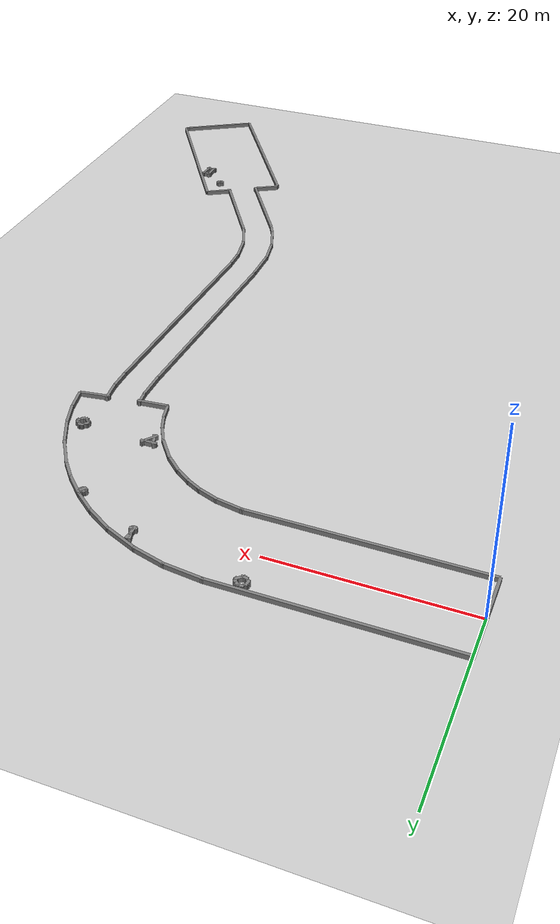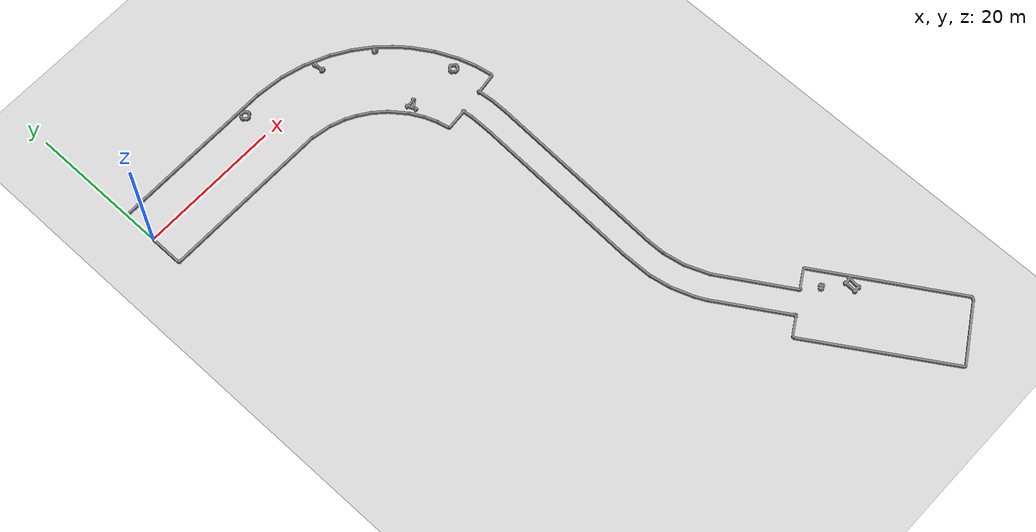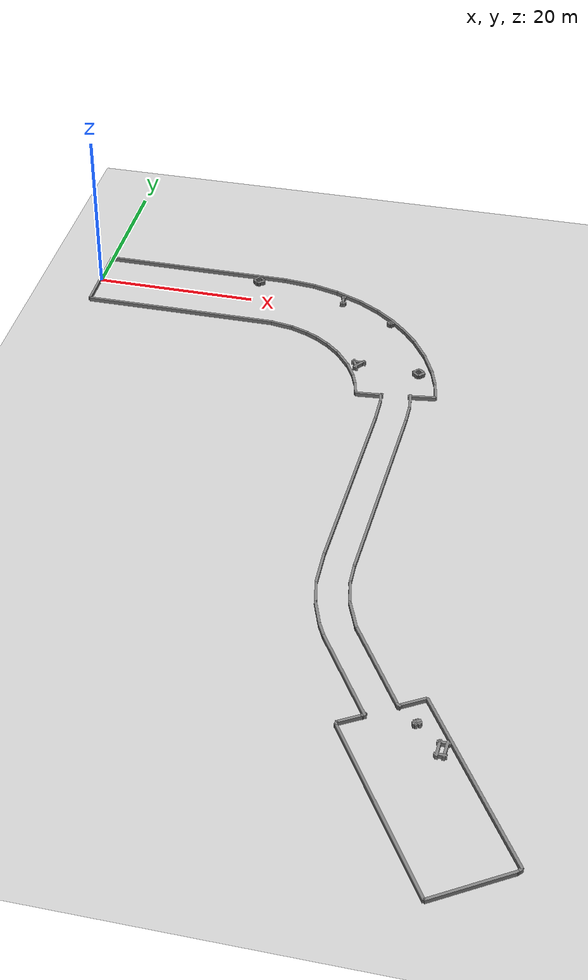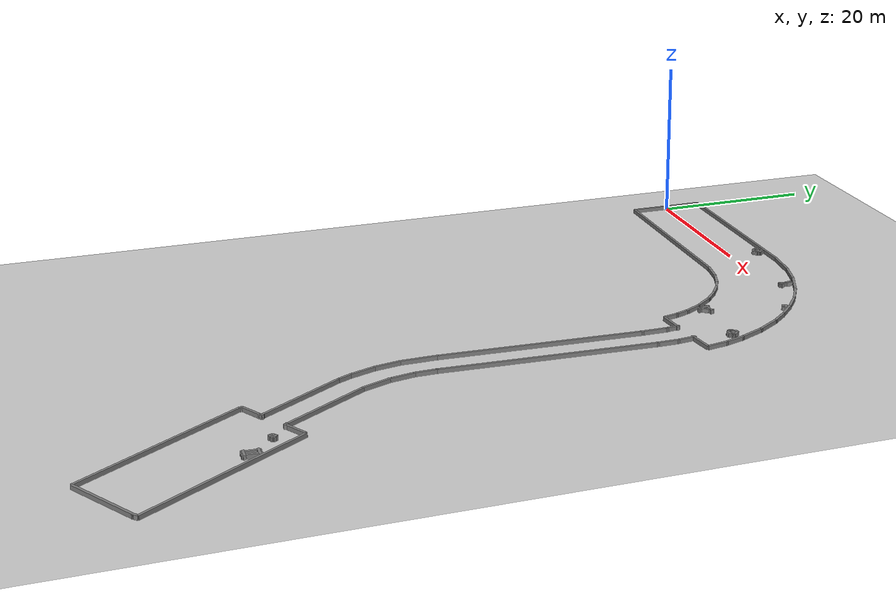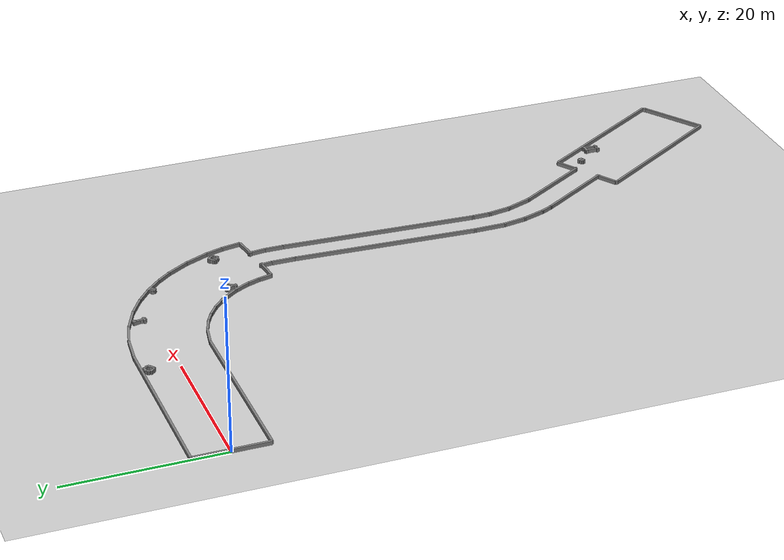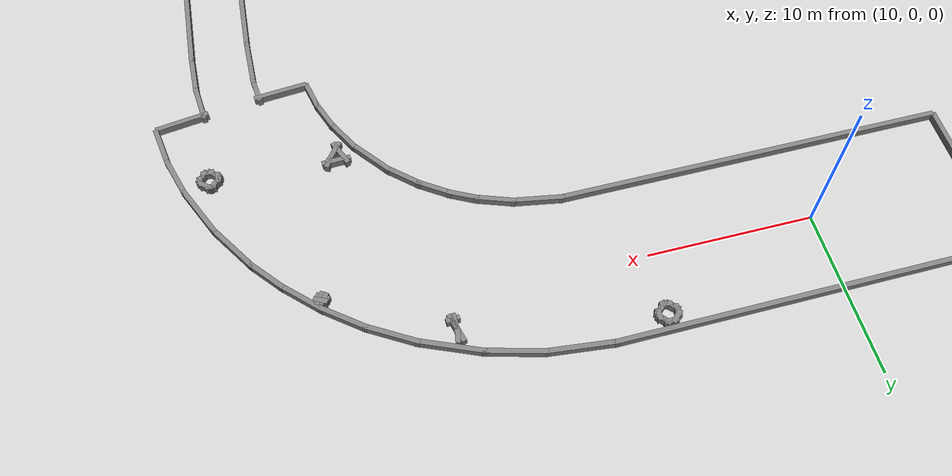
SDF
<?xml version="1.0"?>
<sdf version="1.6">
  <world name="open_narrow_obs">
    <include><uri>model://ground_plane</uri></include>
    <include><uri>model://sun</uri></include>
    <physics type="ode"><real_time_update_rate>1000</real_time_update_rate><max_step_size>0.001</max_step_size></physics>
    <model name="corridor_walls">
      <static>true</static>
      <link name="wall_0">
        <pose>25.3414 4.5480 0.2500 0 0 -0.11243</pose>
        <collision name="c"><geometry><box><size>4.1996 0.3000 0.5000</size></box></geometry></collision>
        <visual name="v"><geometry><box><size>4.1996 0.3000 0.5000</size></box></geometry>
          <material><ambient>0.35 0.35 0.35 1</ambient><diffuse>0.5 0.5 0.5 1</diffuse></material></visual>
      </link>
      <link name="wall_1">
        <pose>28.8955 3.8874 0.2500 0 0 -0.26791</pose>
        <collision name="c"><geometry><box><size>3.6054 0.3000 0.5000</size></box></geometry></collision>
        <visual name="v"><geometry><box><size>3.6054 0.3000 0.5000</size></box></geometry>
          <material><ambient>0.35 0.35 0.35 1</ambient><diffuse>0.5 0.5 0.5 1</diffuse></material></visual>
      </link>
      <link name="wall_2">
        <pose>32.1655 2.7241 0.2500 0 0 -0.40944</pose>
        <collision name="c"><geometry><box><size>3.9110 0.3000 0.5000</size></box></geometry></collision>
        <visual name="v"><geometry><box><size>3.9110 0.3000 0.5000</size></box></geometry>
          <material><ambient>0.35 0.35 0.35 1</ambient><diffuse>0.5 0.5 0.5 1</diffuse></material></visual>
      </link>
      <link name="wall_3">
        <pose>35.1214 1.2145 0.2500 0 0 -0.54756</pose>
        <collision name="c"><geometry><box><size>3.3013 0.3000 0.5000</size></box></geometry></collision>
        <visual name="v"><geometry><box><size>3.3013 0.3000 0.5000</size></box></geometry>
          <material><ambient>0.35 0.35 0.35 1</ambient><diffuse>0.5 0.5 0.5 1</diffuse></material></visual>
      </link>
      <link name="wall_4">
        <pose>37.4803 -0.4211 0.2500 0 0 -0.67114</pose>
        <collision name="c"><geometry><box><size>3.0135 0.3000 0.5000</size></box></geometry></collision>
        <visual name="v"><geometry><box><size>3.0135 0.3000 0.5000</size></box></geometry>
          <material><ambient>0.35 0.35 0.35 1</ambient><diffuse>0.5 0.5 0.5 1</diffuse></material></visual>
      </link>
      <link name="wall_5">
        <pose>39.5023 -2.2229 0.2500 0 0 -0.78540</pose>
        <collision name="c"><geometry><box><size>2.9775 0.3000 0.5000</size></box></geometry></collision>
        <visual name="v"><geometry><box><size>2.9775 0.3000 0.5000</size></box></geometry>
          <material><ambient>0.35 0.35 0.35 1</ambient><diffuse>0.5 0.5 0.5 1</diffuse></material></visual>
      </link>
      <link name="wall_6">
        <pose>41.1775 -4.0554 0.2500 0 0 -0.88313</pose>
        <collision name="c"><geometry><box><size>2.5647 0.3000 0.5000</size></box></geometry></collision>
        <visual name="v"><geometry><box><size>2.5647 0.3000 0.5000</size></box></geometry>
          <material><ambient>0.35 0.35 0.35 1</ambient><diffuse>0.5 0.5 0.5 1</diffuse></material></visual>
      </link>
      <link name="wall_7">
        <pose>42.7819 -6.3200 0.2500 0 0 -1.00407</pose>
        <collision name="c"><geometry><box><size>3.5596 0.3000 0.5000</size></box></geometry></collision>
        <visual name="v"><geometry><box><size>3.5596 0.3000 0.5000</size></box></geometry>
          <material><ambient>0.35 0.35 0.35 1</ambient><diffuse>0.5 0.5 0.5 1</diffuse></material></visual>
      </link>
      <link name="wall_8">
        <pose>44.3542 -9.2131 0.2500 0 0 -1.14103</pose>
        <collision name="c"><geometry><box><size>3.6001 0.3000 0.5000</size></box></geometry></collision>
        <visual name="v"><geometry><box><size>3.6001 0.3000 0.5000</size></box></geometry>
          <material><ambient>0.35 0.35 0.35 1</ambient><diffuse>0.5 0.5 0.5 1</diffuse></material></visual>
      </link>
      <link name="wall_9">
        <pose>45.4234 -11.9179 0.2500 0 0 -1.26492</pose>
        <collision name="c"><geometry><box><size>2.7906 0.3000 0.5000</size></box></geometry></collision>
        <visual name="v"><geometry><box><size>2.7906 0.3000 0.5000</size></box></geometry>
          <material><ambient>0.35 0.35 0.35 1</ambient><diffuse>0.5 0.5 0.5 1</diffuse></material></visual>
      </link>
      <link name="wall_10">
        <pose>46.0216 -14.3015 0.2500 0 0 -1.38724</pose>
        <collision name="c"><geometry><box><size>2.6970 0.3000 0.5000</size></box></geometry></collision>
        <visual name="v"><geometry><box><size>2.6970 0.3000 0.5000</size></box></geometry>
          <material><ambient>0.35 0.35 0.35 1</ambient><diffuse>0.5 0.5 0.5 1</diffuse></material></visual>
      </link>
      <link name="wall_11">
        <pose>44.6453 -15.8654 0.2500 0 0 -2.99985</pose>
        <collision name="c"><geometry><box><size>3.2673 0.3000 0.5000</size></box></geometry></collision>
        <visual name="v"><geometry><box><size>3.2673 0.3000 0.5000</size></box></geometry>
          <material><ambient>0.35 0.35 0.35 1</ambient><diffuse>0.5 0.5 0.5 1</diffuse></material></visual>
      </link>
      <link name="wall_12">
        <pose>43.4293 -16.9900 0.2500 0 0 -1.45565</pose>
        <collision name="c"><geometry><box><size>2.4760 0.3000 0.5000</size></box></geometry></collision>
        <visual name="v"><geometry><box><size>2.4760 0.3000 0.5000</size></box></geometry>
          <material><ambient>0.35 0.35 0.35 1</ambient><diffuse>0.5 0.5 0.5 1</diffuse></material></visual>
      </link>
      <link name="wall_13">
        <pose>43.5553 -19.3198 0.2500 0 0 -1.57080</pose>
        <collision name="c"><geometry><box><size>2.7634 0.3000 0.5000</size></box></geometry></collision>
        <visual name="v"><geometry><box><size>2.7634 0.3000 0.5000</size></box></geometry>
          <material><ambient>0.35 0.35 0.35 1</ambient><diffuse>0.5 0.5 0.5 1</diffuse></material></visual>
      </link>
      <link name="wall_14">
        <pose>42.9927 -33.4018 0.2500 0 0 -1.61456</pose>
        <collision name="c"><geometry><box><size>26.0121 0.3000 0.5000</size></box></geometry></collision>
        <visual name="v"><geometry><box><size>26.0121 0.3000 0.5000</size></box></geometry>
          <material><ambient>0.35 0.35 0.35 1</ambient><diffuse>0.5 0.5 0.5 1</diffuse></material></visual>
      </link>
      <link name="wall_15">
        <pose>42.4615 -47.4722 0.2500 0 0 -1.54554</pose>
        <collision name="c"><geometry><box><size>2.7749 0.3000 0.5000</size></box></geometry></collision>
        <visual name="v"><geometry><box><size>2.7749 0.3000 0.5000</size></box></geometry>
          <material><ambient>0.35 0.35 0.35 1</ambient><diffuse>0.5 0.5 0.5 1</diffuse></material></visual>
      </link>
      <link name="wall_16">
        <pose>42.7715 -50.1854 0.2500 0 0 -1.38545</pose>
        <collision name="c"><geometry><box><size>3.3523 0.3000 0.5000</size></box></geometry></collision>
        <visual name="v"><geometry><box><size>3.3523 0.3000 0.5000</size></box></geometry>
          <material><ambient>0.35 0.35 0.35 1</ambient><diffuse>0.5 0.5 0.5 1</diffuse></material></visual>
      </link>
      <link name="wall_17">
        <pose>43.7010 -53.3141 0.2500 0 0 -1.19355</pose>
        <collision name="c"><geometry><box><size>3.8630 0.3000 0.5000</size></box></geometry></collision>
        <visual name="v"><geometry><box><size>3.8630 0.3000 0.5000</size></box></geometry>
          <material><ambient>0.35 0.35 0.35 1</ambient><diffuse>0.5 0.5 0.5 1</diffuse></material></visual>
      </link>
      <link name="wall_18">
        <pose>47.3138 -59.6961 0.2500 0 0 -1.01220</pose>
        <collision name="c"><geometry><box><size>11.5029 0.3000 0.5000</size></box></geometry></collision>
        <visual name="v"><geometry><box><size>11.5029 0.3000 0.5000</size></box></geometry>
          <material><ambient>0.35 0.35 0.35 1</ambient><diffuse>0.5 0.5 0.5 1</diffuse></material></visual>
      </link>
      <link name="wall_19">
        <pose>50.3695 -64.4833 0.2500 0 0 -0.56262</pose>
        <collision name="c"><geometry><box><size>0.6172 0.3000 0.5000</size></box></geometry></collision>
        <visual name="v"><geometry><box><size>0.6172 0.3000 0.5000</size></box></geometry>
          <material><ambient>0.35 0.35 0.35 1</ambient><diffuse>0.5 0.5 0.5 1</diffuse></material></visual>
      </link>
      <link name="wall_20">
        <pose>51.5869 -63.8164 0.2500 0 0 0.54367</pose>
        <collision name="c"><geometry><box><size>3.1998 0.3000 0.5000</size></box></geometry></collision>
        <visual name="v"><geometry><box><size>3.1998 0.3000 0.5000</size></box></geometry>
          <material><ambient>0.35 0.35 0.35 1</ambient><diffuse>0.5 0.5 0.5 1</diffuse></material></visual>
      </link>
      <link name="wall_21">
        <pose>58.6572 -72.0301 0.2500 0 0 -1.00794</pose>
        <collision name="c"><geometry><box><size>21.3832 0.3000 0.5000</size></box></geometry></collision>
        <visual name="v"><geometry><box><size>21.3832 0.3000 0.5000</size></box></geometry>
          <material><ambient>0.35 0.35 0.35 1</ambient><diffuse>0.5 0.5 0.5 1</diffuse></material></visual>
      </link>
      <link name="wall_22">
        <pose>64.1320 -81.2738 0.2500 0 0 -2.31020</pose>
        <collision name="c"><geometry><box><size>0.6982 0.3000 0.5000</size></box></geometry></collision>
        <visual name="v"><geometry><box><size>0.6982 0.3000 0.5000</size></box></geometry>
          <material><ambient>0.35 0.35 0.35 1</ambient><diffuse>0.5 0.5 0.5 1</diffuse></material></visual>
      </link>
      <link name="wall_23">
        <pose>60.2483 -83.7904 0.2500 0 0 -2.57923</pose>
        <collision name="c"><geometry><box><size>9.0914 0.3000 0.5000</size></box></geometry></collision>
        <visual name="v"><geometry><box><size>9.0914 0.3000 0.5000</size></box></geometry>
          <material><ambient>0.35 0.35 0.35 1</ambient><diffuse>0.5 0.5 0.5 1</diffuse></material></visual>
      </link>
      <link name="wall_24">
        <pose>50.6447 -77.1725 0.2500 0 0 2.13792</pose>
        <collision name="c"><geometry><box><size>21.4403 0.3000 0.5000</size></box></geometry></collision>
        <visual name="v"><geometry><box><size>21.4403 0.3000 0.5000</size></box></geometry>
          <material><ambient>0.35 0.35 0.35 1</ambient><diffuse>0.5 0.5 0.5 1</diffuse></material></visual>
      </link>
      <link name="wall_25">
        <pose>44.9428 -68.0919 0.2500 0 0 1.57080</pose>
        <collision name="c"><geometry><box><size>0.4692 0.3000 0.5000</size></box></geometry></collision>
        <visual name="v"><geometry><box><size>0.4692 0.3000 0.5000</size></box></geometry>
          <material><ambient>0.35 0.35 0.35 1</ambient><diffuse>0.5 0.5 0.5 1</diffuse></material></visual>
      </link>
      <link name="wall_26">
        <pose>46.1492 -67.1915 0.2500 0 0 0.54495</pose>
        <collision name="c"><geometry><box><size>2.9525 0.3000 0.5000</size></box></geometry></collision>
        <visual name="v"><geometry><box><size>2.9525 0.3000 0.5000</size></box></geometry>
          <material><ambient>0.35 0.35 0.35 1</ambient><diffuse>0.5 0.5 0.5 1</diffuse></material></visual>
      </link>
      <link name="wall_27">
        <pose>47.3189 -66.4181 0.2500 0 0 1.00818</pose>
        <collision name="c"><geometry><box><size>0.6172 0.3000 0.5000</size></box></geometry></collision>
        <visual name="v"><geometry><box><size>0.6172 0.3000 0.5000</size></box></geometry>
          <material><ambient>0.35 0.35 0.35 1</ambient><diffuse>0.5 0.5 0.5 1</diffuse></material></visual>
      </link>
      <link name="wall_28">
        <pose>44.4035 -61.6941 0.2500 0 0 2.13411</pose>
        <collision name="c"><geometry><box><size>11.5361 0.3000 0.5000</size></box></geometry></collision>
        <visual name="v"><geometry><box><size>11.5361 0.3000 0.5000</size></box></geometry>
          <material><ambient>0.35 0.35 0.35 1</ambient><diffuse>0.5 0.5 0.5 1</diffuse></material></visual>
      </link>
      <link name="wall_29">
        <pose>41.0212 -56.1810 0.2500 0 0 2.03444</pose>
        <collision name="c"><geometry><box><size>1.9771 0.3000 0.5000</size></box></geometry></collision>
        <visual name="v"><geometry><box><size>1.9771 0.3000 0.5000</size></box></geometry>
          <material><ambient>0.35 0.35 0.35 1</ambient><diffuse>0.5 0.5 0.5 1</diffuse></material></visual>
      </link>
      <link name="wall_30">
        <pose>40.1077 -53.9140 0.2500 0 0 1.91118</pose>
        <collision name="c"><geometry><box><size>3.4826 0.3000 0.5000</size></box></geometry></collision>
        <visual name="v"><geometry><box><size>3.4826 0.3000 0.5000</size></box></geometry>
          <material><ambient>0.35 0.35 0.35 1</ambient><diffuse>0.5 0.5 0.5 1</diffuse></material></visual>
      </link>
      <link name="wall_31">
        <pose>39.2892 -50.8916 0.2500 0 0 1.75614</pose>
        <collision name="c"><geometry><box><size>3.3523 0.3000 0.5000</size></box></geometry></collision>
        <visual name="v"><geometry><box><size>3.3523 0.3000 0.5000</size></box></geometry>
          <material><ambient>0.35 0.35 0.35 1</ambient><diffuse>0.5 0.5 0.5 1</diffuse></material></visual>
      </link>
      <link name="wall_32">
        <pose>38.9741 -47.2595 0.2500 0 0 1.58563</pose>
        <collision name="c"><geometry><box><size>4.5139 0.3000 0.5000</size></box></geometry></collision>
        <visual name="v"><geometry><box><size>4.5139 0.3000 0.5000</size></box></geometry>
          <material><ambient>0.35 0.35 0.35 1</ambient><diffuse>0.5 0.5 0.5 1</diffuse></material></visual>
      </link>
      <link name="wall_33">
        <pose>39.4742 -33.0502 0.2500 0 0 1.52690</pose>
        <collision name="c"><geometry><box><size>24.5108 0.3000 0.5000</size></box></geometry></collision>
        <visual name="v"><geometry><box><size>24.5108 0.3000 0.5000</size></box></geometry>
          <material><ambient>0.35 0.35 0.35 1</ambient><diffuse>0.5 0.5 0.5 1</diffuse></material></visual>
      </link>
      <link name="wall_34">
        <pose>40.0053 -19.4135 0.2500 0 0 1.57080</pose>
        <collision name="c"><geometry><box><size>3.3991 0.3000 0.5000</size></box></geometry></collision>
        <visual name="v"><geometry><box><size>3.3991 0.3000 0.5000</size></box></geometry>
          <material><ambient>0.35 0.35 0.35 1</ambient><diffuse>0.5 0.5 0.5 1</diffuse></material></visual>
      </link>
      <link name="wall_35">
        <pose>39.9128 -17.1326 0.2500 0 0 1.69515</pose>
        <collision name="c"><geometry><box><size>1.8117 0.3000 0.5000</size></box></geometry></collision>
        <visual name="v"><geometry><box><size>1.8117 0.3000 0.5000</size></box></geometry>
          <material><ambient>0.35 0.35 0.35 1</ambient><diffuse>0.5 0.5 0.5 1</diffuse></material></visual>
      </link>
      <link name="wall_36">
        <pose>38.4812 -16.6475 0.2500 0 0 -3.05239</pose>
        <collision name="c"><geometry><box><size>3.3120 0.3000 0.5000</size></box></geometry></collision>
        <visual name="v"><geometry><box><size>3.3120 0.3000 0.5000</size></box></geometry>
          <material><ambient>0.35 0.35 0.35 1</ambient><diffuse>0.5 0.5 0.5 1</diffuse></material></visual>
      </link>
      <link name="wall_37">
        <pose>36.6341 -15.8440 0.2500 0 0 1.79515</pose>
        <collision name="c"><geometry><box><size>1.9856 0.3000 0.5000</size></box></geometry></collision>
        <visual name="v"><geometry><box><size>1.9856 0.3000 0.5000</size></box></geometry>
          <material><ambient>0.35 0.35 0.35 1</ambient><diffuse>0.5 0.5 0.5 1</diffuse></material></visual>
      </link>
      <link name="wall_38">
        <pose>36.1397 -14.1973 0.2500 0 0 1.92550</pose>
        <collision name="c"><geometry><box><size>2.0995 0.3000 0.5000</size></box></geometry></collision>
        <visual name="v"><geometry><box><size>2.0995 0.3000 0.5000</size></box></geometry>
          <material><ambient>0.35 0.35 0.35 1</ambient><diffuse>0.5 0.5 0.5 1</diffuse></material></visual>
      </link>
      <link name="wall_39">
        <pose>35.3355 -12.4346 0.2500 0 0 2.06075</pose>
        <collision name="c"><geometry><box><size>2.4250 0.3000 0.5000</size></box></geometry></collision>
        <visual name="v"><geometry><box><size>2.4250 0.3000 0.5000</size></box></geometry>
          <material><ambient>0.35 0.35 0.35 1</ambient><diffuse>0.5 0.5 0.5 1</diffuse></material></visual>
      </link>
      <link name="wall_40">
        <pose>34.0053 -10.4243 0.2500 0 0 2.22787</pose>
        <collision name="c"><geometry><box><size>3.0628 0.3000 0.5000</size></box></geometry></collision>
        <visual name="v"><geometry><box><size>3.0628 0.3000 0.5000</size></box></geometry>
          <material><ambient>0.35 0.35 0.35 1</ambient><diffuse>0.5 0.5 0.5 1</diffuse></material></visual>
      </link>
      <link name="wall_41">
        <pose>32.3753 -8.6084 0.2500 0 0 2.39665</pose>
        <collision name="c"><geometry><box><size>2.4856 0.3000 0.5000</size></box></geometry></collision>
        <visual name="v"><geometry><box><size>2.4856 0.3000 0.5000</size></box></geometry>
          <material><ambient>0.35 0.35 0.35 1</ambient><diffuse>0.5 0.5 0.5 1</diffuse></material></visual>
      </link>
      <link name="wall_42">
        <pose>30.7758 -7.3181 0.2500 0 0 2.53605</pose>
        <collision name="c"><geometry><box><size>2.2764 0.3000 0.5000</size></box></geometry></collision>
        <visual name="v"><geometry><box><size>2.2764 0.3000 0.5000</size></box></geometry>
          <material><ambient>0.35 0.35 0.35 1</ambient><diffuse>0.5 0.5 0.5 1</diffuse></material></visual>
      </link>
      <link name="wall_43">
        <pose>29.2605 -6.3903 0.2500 0 0 2.66071</pose>
        <collision name="c"><geometry><box><size>1.9214 0.3000 0.5000</size></box></geometry></collision>
        <visual name="v"><geometry><box><size>1.9214 0.3000 0.5000</size></box></geometry>
          <material><ambient>0.35 0.35 0.35 1</ambient><diffuse>0.5 0.5 0.5 1</diffuse></material></visual>
      </link>
      <link name="wall_44">
        <pose>27.5286 -5.6482 0.2500 0 0 2.79282</pose>
        <collision name="c"><geometry><box><size>2.4946 0.3000 0.5000</size></box></geometry></collision>
        <visual name="v"><geometry><box><size>2.4946 0.3000 0.5000</size></box></geometry>
          <material><ambient>0.35 0.35 0.35 1</ambient><diffuse>0.5 0.5 0.5 1</diffuse></material></visual>
      </link>
      <link name="wall_45">
        <pose>25.1161 -5.0300 0.2500 0 0 2.96565</pose>
        <collision name="c"><geometry><box><size>3.1566 0.3000 0.5000</size></box></geometry></collision>
        <visual name="v"><geometry><box><size>3.1566 0.3000 0.5000</size></box></geometry>
          <material><ambient>0.35 0.35 0.35 1</ambient><diffuse>0.5 0.5 0.5 1</diffuse></material></visual>
      </link>
      <link name="wall_46">
        <pose>11.9145 -4.7823 0.2500 0 0 3.14159</pose>
        <collision name="c"><geometry><box><size>23.9433 0.3000 0.5000</size></box></geometry></collision>
        <visual name="v"><geometry><box><size>23.9433 0.3000 0.5000</size></box></geometry>
          <material><ambient>0.35 0.35 0.35 1</ambient><diffuse>0.5 0.5 0.5 1</diffuse></material></visual>
      </link>
      <link name="wall_47">
        <pose>-0.0572 -0.0073 0.2500 0 0 1.57080</pose>
        <collision name="c"><geometry><box><size>9.5500 0.3000 0.5000</size></box></geometry></collision>
        <visual name="v"><geometry><box><size>9.5500 0.3000 0.5000</size></box></geometry>
          <material><ambient>0.35 0.35 0.35 1</ambient><diffuse>0.5 0.5 0.5 1</diffuse></material></visual>
      </link>
      <link name="wall_48">
        <pose>11.7399 4.7677 0.2500 0 0 0.00000</pose>
        <collision name="c"><geometry><box><size>23.5942 0.3000 0.5000</size></box></geometry></collision>
        <visual name="v"><geometry><box><size>23.5942 0.3000 0.5000</size></box></geometry>
          <material><ambient>0.35 0.35 0.35 1</ambient><diffuse>0.5 0.5 0.5 1</diffuse></material></visual>
      </link>
      <link name="wall_49">
        <pose>38.4916 -1.7650 0.2500 0 0 2.65634</pose>
        <collision name="c"><geometry><box><size>0.8360 0.3000 0.5000</size></box></geometry></collision>
        <visual name="v"><geometry><box><size>0.8360 0.3000 0.5000</size></box></geometry>
          <material><ambient>0.35 0.35 0.35 1</ambient><diffuse>0.5 0.5 0.5 1</diffuse></material></visual>
      </link>
      <link name="wall_50">
        <pose>38.3072 -1.7958 0.2500 0 0 -2.17634</pose>
        <collision name="c"><geometry><box><size>0.7941 0.3000 0.5000</size></box></geometry></collision>
        <visual name="v"><geometry><box><size>0.7941 0.3000 0.5000</size></box></geometry>
          <material><ambient>0.35 0.35 0.35 1</ambient><diffuse>0.5 0.5 0.5 1</diffuse></material></visual>
      </link>
      <link name="wall_51">
        <pose>38.3451 -1.9275 0.2500 0 0 -0.56581</pose>
        <collision name="c"><geometry><box><size>0.8246 0.3000 0.5000</size></box></geometry></collision>
        <visual name="v"><geometry><box><size>0.8246 0.3000 0.5000</size></box></geometry>
          <material><ambient>0.35 0.35 0.35 1</ambient><diffuse>0.5 0.5 0.5 1</diffuse></material></visual>
      </link>
      <link name="wall_52">
        <pose>38.5203 -1.8888 0.2500 0 0 0.95055</pose>
        <collision name="c"><geometry><box><size>0.8376 0.3000 0.5000</size></box></geometry></collision>
        <visual name="v"><geometry><box><size>0.8376 0.3000 0.5000</size></box></geometry>
          <material><ambient>0.35 0.35 0.35 1</ambient><diffuse>0.5 0.5 0.5 1</diffuse></material></visual>
      </link>
      <link name="wall_53">
        <pose>55.3715 -68.2106 0.2500 0 0 3.12437</pose>
        <collision name="c"><geometry><box><size>1.3627 0.3000 0.5000</size></box></geometry></collision>
        <visual name="v"><geometry><box><size>1.3627 0.3000 0.5000</size></box></geometry>
          <material><ambient>0.35 0.35 0.35 1</ambient><diffuse>0.5 0.5 0.5 1</diffuse></material></visual>
      </link>
      <link name="wall_54">
        <pose>54.9523 -68.9735 0.2500 0 0 -1.61490</pose>
        <collision name="c"><geometry><box><size>2.1326 0.3000 0.5000</size></box></geometry></collision>
        <visual name="v"><geometry><box><size>2.1326 0.3000 0.5000</size></box></geometry>
          <material><ambient>0.35 0.35 0.35 1</ambient><diffuse>0.5 0.5 0.5 1</diffuse></material></visual>
      </link>
      <link name="wall_55">
        <pose>55.2739 -69.7414 0.2500 0 0 -0.01797</pose>
        <collision name="c"><geometry><box><size>1.3185 0.3000 0.5000</size></box></geometry></collision>
        <visual name="v"><geometry><box><size>1.3185 0.3000 0.5000</size></box></geometry>
          <material><ambient>0.35 0.35 0.35 1</ambient><diffuse>0.5 0.5 0.5 1</diffuse></material></visual>
      </link>
      <link name="wall_56">
        <pose>55.6932 -68.9750 0.2500 0 0 1.50263</pose>
        <collision name="c"><geometry><box><size>2.1351 0.3000 0.5000</size></box></geometry></collision>
        <visual name="v"><geometry><box><size>2.1351 0.3000 0.5000</size></box></geometry>
          <material><ambient>0.35 0.35 0.35 1</ambient><diffuse>0.5 0.5 0.5 1</diffuse></material></visual>
      </link>
      <link name="wall_57">
        <pose>52.5204 -66.3661 0.2500 0 0 0.45515</pose>
        <collision name="c"><geometry><box><size>0.9814 0.3000 0.5000</size></box></geometry></collision>
        <visual name="v"><geometry><box><size>0.9814 0.3000 0.5000</size></box></geometry>
          <material><ambient>0.35 0.35 0.35 1</ambient><diffuse>0.5 0.5 0.5 1</diffuse></material></visual>
      </link>
      <link name="wall_58">
        <pose>52.6290 -66.1992 0.2500 0 0 2.10282</pose>
        <collision name="c"><geometry><box><size>0.8289 0.3000 0.5000</size></box></geometry></collision>
        <visual name="v"><geometry><box><size>0.8289 0.3000 0.5000</size></box></geometry>
          <material><ambient>0.35 0.35 0.35 1</ambient><diffuse>0.5 0.5 0.5 1</diffuse></material></visual>
      </link>
      <link name="wall_59">
        <pose>52.4400 -66.1930 0.2500 0 0 -2.56729</pose>
        <collision name="c"><geometry><box><size>0.9328 0.3000 0.5000</size></box></geometry></collision>
        <visual name="v"><geometry><box><size>0.9328 0.3000 0.5000</size></box></geometry>
          <material><ambient>0.35 0.35 0.35 1</ambient><diffuse>0.5 0.5 0.5 1</diffuse></material></visual>
      </link>
      <link name="wall_60">
        <pose>52.3231 -66.3826 0.2500 0 0 -1.14336</pose>
        <collision name="c"><geometry><box><size>0.7523 0.3000 0.5000</size></box></geometry></collision>
        <visual name="v"><geometry><box><size>0.7523 0.3000 0.5000</size></box></geometry>
          <material><ambient>0.35 0.35 0.35 1</ambient><diffuse>0.5 0.5 0.5 1</diffuse></material></visual>
      </link>
      <link name="wall_61">
        <pose>43.5616 -11.7323 0.2500 0 0 0.00000</pose>
        <collision name="c"><geometry><box><size>0.7741 0.3000 0.5000</size></box></geometry></collision>
        <visual name="v"><geometry><box><size>0.7741 0.3000 0.5000</size></box></geometry>
          <material><ambient>0.35 0.35 0.35 1</ambient><diffuse>0.5 0.5 0.5 1</diffuse></material></visual>
      </link>
      <link name="wall_62">
        <pose>43.8951 -11.5430 0.2500 0 0 0.85466</pose>
        <collision name="c"><geometry><box><size>0.9386 0.3000 0.5000</size></box></geometry></collision>
        <visual name="v"><geometry><box><size>0.9386 0.3000 0.5000</size></box></geometry>
          <material><ambient>0.35 0.35 0.35 1</ambient><diffuse>0.5 0.5 0.5 1</diffuse></material></visual>
      </link>
      <link name="wall_63">
        <pose>44.0383 -11.2173 0.2500 0 0 1.72149</pose>
        <collision name="c"><geometry><box><size>0.7163 0.3000 0.5000</size></box></geometry></collision>
        <visual name="v"><geometry><box><size>0.7163 0.3000 0.5000</size></box></geometry>
          <material><ambient>0.35 0.35 0.35 1</ambient><diffuse>0.5 0.5 0.5 1</diffuse></material></visual>
      </link>
      <link name="wall_64">
        <pose>43.8160 -10.8925 0.2500 0 0 2.42546</pose>
        <collision name="c"><geometry><box><size>0.9386 0.3000 0.5000</size></box></geometry></collision>
        <visual name="v"><geometry><box><size>0.9386 0.3000 0.5000</size></box></geometry>
          <material><ambient>0.35 0.35 0.35 1</ambient><diffuse>0.5 0.5 0.5 1</diffuse></material></visual>
      </link>
      <link name="wall_65">
        <pose>43.4991 -10.7198 0.2500 0 0 3.14159</pose>
        <collision name="c"><geometry><box><size>0.6491 0.3000 0.5000</size></box></geometry></collision>
        <visual name="v"><geometry><box><size>0.6491 0.3000 0.5000</size></box></geometry>
          <material><ambient>0.35 0.35 0.35 1</ambient><diffuse>0.5 0.5 0.5 1</diffuse></material></visual>
      </link>
      <link name="wall_66">
        <pose>43.1898 -10.9167 0.2500 0 0 -2.35619</pose>
        <collision name="c"><geometry><box><size>0.9812 0.3000 0.5000</size></box></geometry></collision>
        <visual name="v"><geometry><box><size>0.9812 0.3000 0.5000</size></box></geometry>
          <material><ambient>0.35 0.35 0.35 1</ambient><diffuse>0.5 0.5 0.5 1</diffuse></material></visual>
      </link>
      <link name="wall_67">
        <pose>42.9928 -11.2573 0.2500 0 0 -1.57080</pose>
        <collision name="c"><geometry><box><size>0.7116 0.3000 0.5000</size></box></geometry></collision>
        <visual name="v"><geometry><box><size>0.7116 0.3000 0.5000</size></box></geometry>
          <material><ambient>0.35 0.35 0.35 1</ambient><diffuse>0.5 0.5 0.5 1</diffuse></material></visual>
      </link>
      <link name="wall_68">
        <pose>43.1822 -11.5595 0.2500 0 0 -0.71613</pose>
        <collision name="c"><geometry><box><size>0.9386 0.3000 0.5000</size></box></geometry></collision>
        <visual name="v"><geometry><box><size>0.9386 0.3000 0.5000</size></box></geometry>
          <material><ambient>0.35 0.35 0.35 1</ambient><diffuse>0.5 0.5 0.5 1</diffuse></material></visual>
      </link>
      <link name="wall_69">
        <pose>36.0827 -11.2631 0.2500 0 0 0.92246</pose>
        <collision name="c"><geometry><box><size>1.5938 0.3000 0.5000</size></box></geometry></collision>
        <visual name="v"><geometry><box><size>1.5938 0.3000 0.5000</size></box></geometry>
          <material><ambient>0.35 0.35 0.35 1</ambient><diffuse>0.5 0.5 0.5 1</diffuse></material></visual>
      </link>
      <link name="wall_70">
        <pose>36.5269 -10.6130 0.2500 0 0 1.16200</pose>
        <collision name="c"><geometry><box><size>0.6605 0.3000 0.5000</size></box></geometry></collision>
        <visual name="v"><geometry><box><size>0.6605 0.3000 0.5000</size></box></geometry>
          <material><ambient>0.35 0.35 0.35 1</ambient><diffuse>0.5 0.5 0.5 1</diffuse></material></visual>
      </link>
      <link name="wall_71">
        <pose>36.0128 -10.6793 0.2500 0 0 -3.11124</pose>
        <collision name="c"><geometry><box><size>1.7565 0.3000 0.5000</size></box></geometry></collision>
        <visual name="v"><geometry><box><size>1.7565 0.3000 0.5000</size></box></geometry>
          <material><ambient>0.35 0.35 0.35 1</ambient><diffuse>0.5 0.5 0.5 1</diffuse></material></visual>
      </link>
      <link name="wall_72">
        <pose>35.6851 -11.1543 0.2500 0 0 -1.18761</pose>
        <collision name="c"><geometry><box><size>1.7209 0.3000 0.5000</size></box></geometry></collision>
        <visual name="v"><geometry><box><size>1.7209 0.3000 0.5000</size></box></geometry>
          <material><ambient>0.35 0.35 0.35 1</ambient><diffuse>0.5 0.5 0.5 1</diffuse></material></visual>
      </link>
      <link name="wall_73">
        <pose>31.6962 1.2109 0.2500 0 0 0.10140</pose>
        <collision name="c"><geometry><box><size>0.7896 0.3000 0.5000</size></box></geometry></collision>
        <visual name="v"><geometry><box><size>0.7896 0.3000 0.5000</size></box></geometry>
          <material><ambient>0.35 0.35 0.35 1</ambient><diffuse>0.5 0.5 0.5 1</diffuse></material></visual>
      </link>
      <link name="wall_74">
        <pose>31.6134 1.7753 0.2500 0 0 1.83466</pose>
        <collision name="c"><geometry><box><size>1.8080 0.3000 0.5000</size></box></geometry></collision>
        <visual name="v"><geometry><box><size>1.8080 0.3000 0.5000</size></box></geometry>
          <material><ambient>0.35 0.35 0.35 1</ambient><diffuse>0.5 0.5 0.5 1</diffuse></material></visual>
      </link>
      <link name="wall_75">
        <pose>31.6624 2.2506 0.2500 0 0 -1.74547</pose>
        <collision name="c"><geometry><box><size>0.8395 0.3000 0.5000</size></box></geometry></collision>
        <visual name="v"><geometry><box><size>0.8395 0.3000 0.5000</size></box></geometry>
          <material><ambient>0.35 0.35 0.35 1</ambient><diffuse>0.5 0.5 0.5 1</diffuse></material></visual>
      </link>
      <link name="wall_76">
        <pose>31.6178 1.5240 0.2500 0 0 -1.57080</pose>
        <collision name="c"><geometry><box><size>1.2741 0.3000 0.5000</size></box></geometry></collision>
        <visual name="v"><geometry><box><size>1.2741 0.3000 0.5000</size></box></geometry>
          <material><ambient>0.35 0.35 0.35 1</ambient><diffuse>0.5 0.5 0.5 1</diffuse></material></visual>
      </link>
      <link name="wall_77">
        <pose>20.1154 3.2973 0.2500 0 0 -0.15069</pose>
        <collision name="c"><geometry><box><size>0.7163 0.3000 0.5000</size></box></geometry></collision>
        <visual name="v"><geometry><box><size>0.7163 0.3000 0.5000</size></box></geometry>
          <material><ambient>0.35 0.35 0.35 1</ambient><diffuse>0.5 0.5 0.5 1</diffuse></material></visual>
      </link>
      <link name="wall_78">
        <pose>20.4713 3.4709 0.2500 0 0 0.72455</pose>
        <collision name="c"><geometry><box><size>1.0268 0.3000 0.5000</size></box></geometry></collision>
        <visual name="v"><geometry><box><size>1.0268 0.3000 0.5000</size></box></geometry>
          <material><ambient>0.35 0.35 0.35 1</ambient><diffuse>0.5 0.5 0.5 1</diffuse></material></visual>
      </link>
      <link name="wall_79">
        <pose>20.6928 3.8052 0.2500 0 0 1.57080</pose>
        <collision name="c"><geometry><box><size>0.7116 0.3000 0.5000</size></box></geometry></collision>
        <visual name="v"><geometry><box><size>0.7116 0.3000 0.5000</size></box></geometry>
          <material><ambient>0.35 0.35 0.35 1</ambient><diffuse>0.5 0.5 0.5 1</diffuse></material></visual>
      </link>
      <link name="wall_80">
        <pose>20.5201 4.1534 0.2500 0 0 2.28693</pose>
        <collision name="c"><geometry><box><size>0.9386 0.3000 0.5000</size></box></geometry></collision>
        <visual name="v"><geometry><box><size>0.9386 0.3000 0.5000</size></box></geometry>
          <material><ambient>0.35 0.35 0.35 1</ambient><diffuse>0.5 0.5 0.5 1</diffuse></material></visual>
      </link>
      <link name="wall_81">
        <pose>20.1553 4.3427 0.2500 0 0 3.14159</pose>
        <collision name="c"><geometry><box><size>0.8366 0.3000 0.5000</size></box></geometry></collision>
        <visual name="v"><geometry><box><size>0.8366 0.3000 0.5000</size></box></geometry>
          <material><ambient>0.35 0.35 0.35 1</ambient><diffuse>0.5 0.5 0.5 1</diffuse></material></visual>
      </link>
      <link name="wall_82">
        <pose>19.7835 4.1771 0.2500 0 0 -2.35619</pose>
        <collision name="c"><geometry><box><size>0.8928 0.3000 0.5000</size></box></geometry></collision>
        <visual name="v"><geometry><box><size>0.8928 0.3000 0.5000</size></box></geometry>
          <material><ambient>0.35 0.35 0.35 1</ambient><diffuse>0.5 0.5 0.5 1</diffuse></material></visual>
      </link>
      <link name="wall_83">
        <pose>19.6178 3.8365 0.2500 0 0 -1.57080</pose>
        <collision name="c"><geometry><box><size>0.7741 0.3000 0.5000</size></box></geometry></collision>
        <visual name="v"><geometry><box><size>0.7741 0.3000 0.5000</size></box></geometry>
          <material><ambient>0.35 0.35 0.35 1</ambient><diffuse>0.5 0.5 0.5 1</diffuse></material></visual>
      </link>
      <link name="wall_84">
        <pose>19.7835 3.4959 0.2500 0 0 -0.78540</pose>
        <collision name="c"><geometry><box><size>0.8928 0.3000 0.5000</size></box></geometry></collision>
        <visual name="v"><geometry><box><size>0.8928 0.3000 0.5000</size></box></geometry>
          <material><ambient>0.35 0.35 0.35 1</ambient><diffuse>0.5 0.5 0.5 1</diffuse></material></visual>
      </link>
    </model>
  </world>
</sdf>
